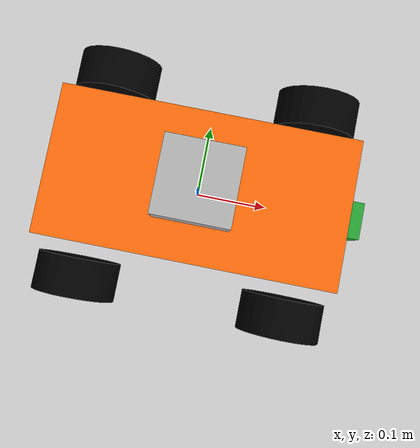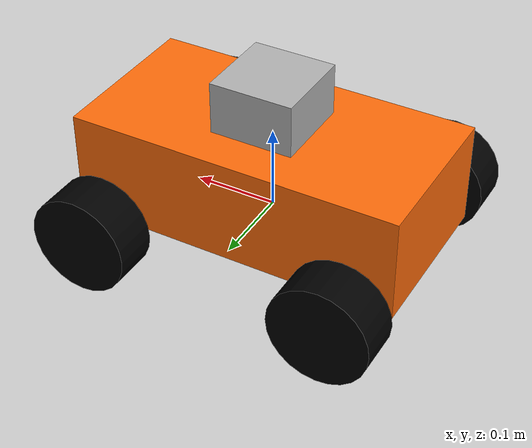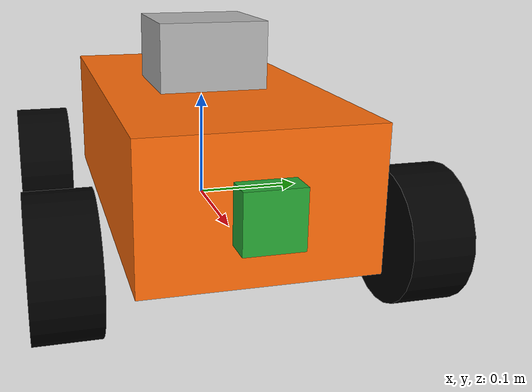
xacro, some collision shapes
<?xml version='1.0'?>

<robot name="deeb_bot" xmlns:xacro="http://www.ros.org/wiki/xacro">

  <!-- import URDF files -->
  <xacro:include filename="$(find deeb_bot)/urdf/common_properties.xacro"/>
  <xacro:include filename="$(find deeb_bot)/urdf/deeb_bot.gazebo" />
<!-- robot_footprint -->

  <link name="robot_footprint"></link>

  <joint name="robot_footprint_joint" type="fixed">
    <origin xyz="0 0 0" rpy="0 0 0" />
    <parent link="robot_footprint"/>
    <child link="chassis" />
  </joint>

  <!-- chassis -->

  <link name='chassis'>
    <pose>0 0 0.1 0 0 0</pose>

    <visual name='chassis_visual'>
      <origin xyz="0 0 0.05" rpy=" 0 0 0"/>
      <geometry>
        <box size=".4 .2 .125"/>
      </geometry>
      <material name="orange"/>
    </visual>

    <inertial>
      <mass value="15.0"/>
      <origin xyz="0.0 0 0" rpy=" 0 0 0"/>
      <inertia
          ixx="0.1" ixy="0" ixz="0"
          iyy="0.1" iyz="0"
          izz="0.1"
      />
    </inertial>

    <collision name='chassis_collision'>
      <origin xyz="0 0 0.05" rpy=" 0 0 0"/>
      <geometry>
        <box size=".41 .21 .126"/>
      </geometry>
    </collision>

  </link>

  <!-- front_left_wheel -->

  <link name="front_left_wheel">

    <visual name='front_left_wheel_visual'>
      <origin xyz="0 0 0" rpy=" 0 1.5707 1.5707"/>
      <geometry>
        <cylinder radius="0.06" length="0.055"/>
      </geometry>
      <material name="black"/>
    </visual>

   <collision name='front_left_wheel_collision'>
      <origin xyz="0 0 0" rpy=" 0 1.5707 1.5707"/>
      <geometry>
        <cylinder radius="0.06" length="0.055"/>
      </geometry>
   </collision>

    <inertial>
      <mass value="5.0"/>
      <origin xyz="0.0 0 0" rpy=" 0 1.5707 1.5707"/>
      <inertia
          ixx="0.1" ixy="0" ixz="0"
          iyy="0.1" iyz="0"
          izz="0.1"
      />
    </inertial>

  </link>

  <joint type="continuous" name="front_left_wheel_joint">
      <origin xyz="0.15 0.15 0" rpy="0 0 0"/>
      <child link="front_left_wheel"/>
      <parent link="chassis"/>
      <axis xyz="0 1 0" rpy="0 0 0"/>
      <limit effort="10000" velocity="1000"/>
      <joint_properties damping="1.0" friction="1.0"/>
  </joint>

  <!-- front_right_wheel -->

  <link name="front_right_wheel">

    <visual name='front_right_wheel_visual'>
      <origin xyz="0 0 0" rpy=" 0 1.5707 1.5707"/>
      <geometry>
        <cylinder radius="0.06" length="0.055"/>
      </geometry>
      <material name="black"/>
    </visual>

    <collision name='front_right_wheel_collision'>
      <origin xyz="0 0 0" rpy=" 0 1.5707 1.5707"/>
      <geometry>
        <cylinder radius="0.06" length="0.055"/>
      </geometry>
    </collision>

    <inertial>
      <mass value="5.0"/>
      <origin xyz="0.0 0 0" rpy=" 0 1.5707 1.5707"/>
      <inertia
          ixx="0.1" ixy="0" ixz="0"
          iyy="0.1" iyz="0"
          izz="0.1"
      />
    </inertial>

  </link>

  <joint type="continuous" name="front_right_wheel_joint">
      <origin xyz="0.15 -0.15 0" rpy="0 0 0"/>
      <child link="front_right_wheel"/>
      <parent link="chassis"/>
      <axis xyz="0 1 0" rpy="0 0 0"/>
      <limit effort="10000" velocity="1000"/>
      <joint_properties damping="1.0" friction="1.0"/>
  </joint>

  <!-- back_left_wheel -->

  <link name="back_left_wheel">

    <visual name='back_left_wheel_visual'>
      <origin xyz="0 0 0" rpy=" 0 1.5707 1.5707"/>
      <geometry>
        <cylinder radius="0.06" length="0.055"/>
      </geometry>
      <material name="black"/>
    </visual>

   <collision name='back_left_wheel_collision'>
      <origin xyz="0 0 0" rpy=" 0 1.5707 1.5707"/>
      <geometry>
        <cylinder radius="0.06" length="0.055"/>
      </geometry>
   </collision>

    <inertial>
      <mass value="5.0"/>
      <origin xyz="0.0 0 0" rpy=" 0 1.5707 1.5707"/>
      <inertia
          ixx="0.1" ixy="0" ixz="0"
          iyy="0.1" iyz="0"
          izz="0.1"
      />
    </inertial>

  </link>

  <joint type="continuous" name="back_left_wheel_joint">
      <origin xyz="-0.15 0.15 0" rpy="0 0 0"/>
      <child link="back_left_wheel"/>
      <parent link="chassis"/>
      <axis xyz="0 1 0" rpy="0 0 0"/>
      <limit effort="10000" velocity="1000"/>
      <joint_properties damping="1.0" friction="1.0"/>
  </joint>

  <!-- back_right_wheel -->

  <link name="back_right_wheel">

    <visual name='back_right_wheel_visual'>
      <origin xyz="0 0 0" rpy=" 0 1.5707 1.5707"/>
      <geometry>
        <cylinder radius="0.06" length="0.055"/>
      </geometry>
      <material name="black"/>
    </visual>

    <collision name='back_right_wheel_collision'>
      <origin xyz="0 0 0" rpy=" 0 1.5707 1.5707"/>
      <geometry>
        <cylinder radius="0.06" length="0.055"/>
      </geometry>
    </collision>

    <inertial>
      <mass value="5.0"/>
      <origin xyz="0.0 0 0" rpy=" 0 1.5707 1.5707"/>
      <inertia
          ixx="0.1" ixy="0" ixz="0"
          iyy="0.1" iyz="0"
          izz="0.1"
      />
    </inertial>

  </link>

  <joint type="continuous" name="back_right_wheel_joint">
      <origin xyz="-0.15 -0.15 0" rpy="0 0 0"/>
      <child link="back_right_wheel"/>
      <parent link="chassis"/>
      <axis xyz="0 1 0" rpy="0 0 0"/>
      <limit effort="10000" velocity="1000"/>
      <joint_properties damping="1.0" friction="1.0"/>
  </joint>

  <!-- camera -->

  <link name="camera">

    <visual name='camera_visual'>
      <origin xyz="0 0 0.05" rpy=" 0 0 0"/>
      <geometry>
        <box size="0.05 0.05 0.05"/>
      </geometry>
    </visual>

   <collision name='camera_collision'>
      <origin xyz="0 0 0" rpy=" 0 0 0"/>
      <geometry>
        <box size="0.05 0.05 0.05"/>
      </geometry>
    </collision>

    <inertial>
      <mass value="0.1"/>
      <origin xyz="0 0 0" rpy=" 0 0 0"/>
      <inertia
          ixx="1e-6" ixy="0" ixz="0"
          iyy="1e-6" iyz="0"
          izz="1e-6"
      />
    </inertial>

  </link>

  <joint type="fixed" name="camera_joint">
      <origin xyz="0.2 0 0" rpy="0 0 0"/>
      <child link="camera"/>
      <parent link="chassis"/>
      <axis xyz="1 0 0" rpy="0 0 0"/>
  </joint>

  <!-- hokuyo laser range finder -->

  <link name="hokuyo">

    <visual name='hokuyo_visual'>
      <origin xyz="0 0 0" rpy=" 0 0 0"/>
      <geometry>
        <mesh filename="package://deeb_bot/meshes/hokuyo.dae"/>
      </geometry>
    </visual>

    <collision name='hokuyo_collision'>
      <origin xyz="0 0 0" rpy=" 0 0 0"/>
      <geometry>
        <box size="0.1 0.1 0.1"/>
      </geometry>
    </collision>

    <inertial>
      <mass value="0.1"/>
      <origin xyz="0 0 0" rpy=" 0 0 0"/>
      <inertia
          ixx="1e-6" ixy="0" ixz="0"
          iyy="1e-6" iyz="0"
          izz="1e-6"
      />
    </inertial>

  </link>

  <joint type="fixed" name="hokuyo_joint">
      <origin xyz="0 0 0.125" rpy="0 0 0"/>
      <child link="hokuyo"/>
      <parent link="chassis"/>
      <axis xyz="1 0 0" rpy="0 0 0"/>
  </joint>

</robot>

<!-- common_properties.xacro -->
<robot name="deeb_bot" xmlns:xacro="http://www.ros.org/wiki/xacro">

  <material name="black">
      <color rgba="0.0 0.0 0.0 1.0"/>
  </material>

  <material name="blue">
    <color rgba="0.0 0.0 1.0 1.0"/>
  </material>

  <material name="green">
    <color rgba="0.0 1.0 0.0 1.0"/>
  </material>

  <material name="red">
    <color rgba="1.0 0.0 0.0 1.0"/>
  </material>

   <material name="orange">
    <color rgba="${255/255} ${108/255} ${10/255} 1.0"/>
  </material>

  <material name="brown">
    <color rgba="${222/255} ${207/255} ${195/255} 1.0"/>
  </material>

  <material name="white">
    <color rgba="1.0 1.0 1.0 1.0"/>
  </material>

</robot>
